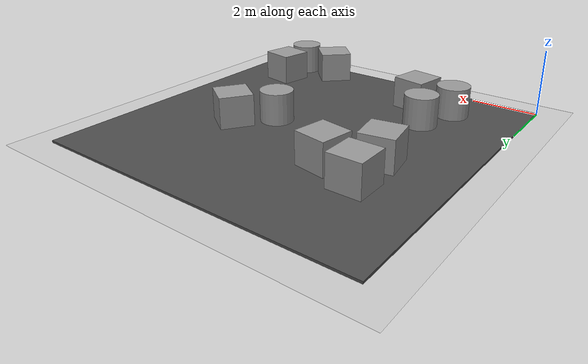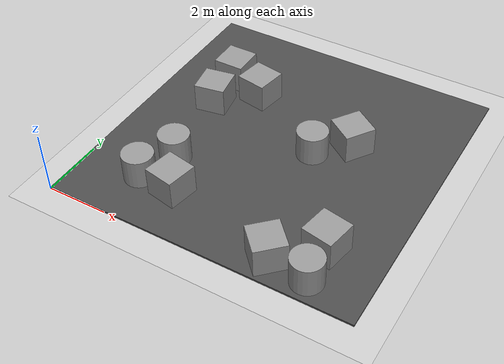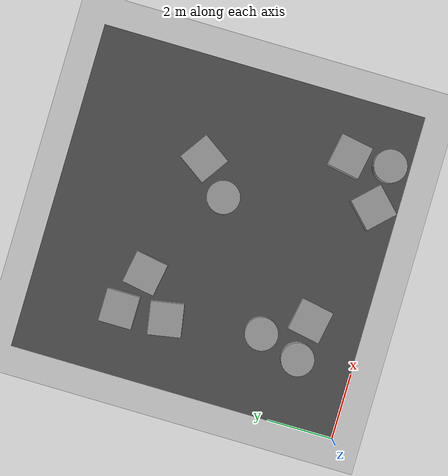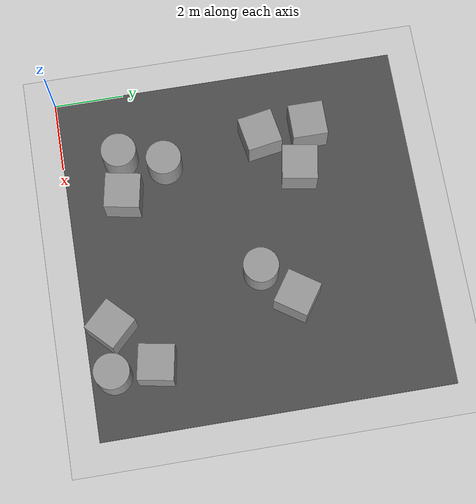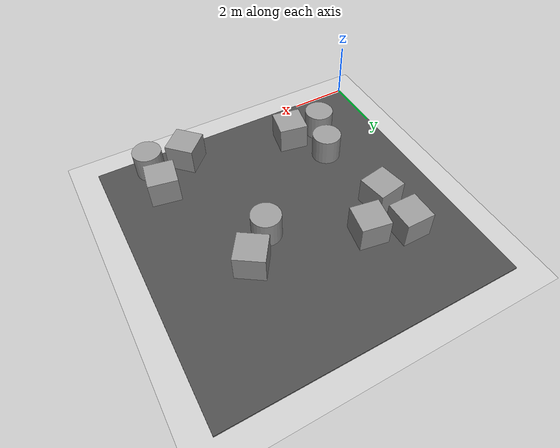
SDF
<sdf version="1.7">
 <world name="default">
  <light name="sun" type="directional">
   <pose>0 0 10 0 -0 0</pose>
   <diffuse>0.8 0.8 0.8 1</diffuse>
   <specular>0.2 0.2 0.2 1</specular>
   <attenuation>
    <range>1000</range>
    <constant>0.9</constant>
    <linear>0.01</linear>
    <quadratic>0.001</quadratic>
   </attenuation>
   <direction>-0.5 0.1 -0.9</direction>
   <spot><inner_angle>0</inner_angle><outer_angle>0</outer_angle><falloff>0</falloff></spot>
  </light>
  <model name="ground_plane">
   <static>1</static>
   <link name="link">
    <collision name="collision">
     <geometry><plane><normal>0 0 1</normal><size>100 100</size></plane></geometry>
     <surface>
      <contact><collide_bitmask>65535</collide_bitmask></contact>
      <friction><ode><mu>100</mu><mu2>50</mu2></ode></friction>
     </surface>
    </collision>
    <visual name="visual">
     <cast_shadows>0</cast_shadows>
     <geometry><plane><normal>0 0 1</normal><size>100 100</size></plane></geometry>
     <material>
      <script><uri>file://media/materials/scripts/gazebo.material</uri><name>Gazebo/Grey</name></script>
     </material>
    </visual>
   </link>
  </model>
  <gravity>0 0 -9.8</gravity>
  <magnetic_field>6e-06 2.3e-05 -4.2e-05</magnetic_field>
  <atmosphere type="adiabatic"/>
  <physics type="ode">
   <max_step_size>0.001</max_step_size>
   <real_time_factor>1</real_time_factor>
   <real_time_update_rate>1000</real_time_update_rate>
  </physics>
  <scene><ambient>0.4 0.4 0.4 1</ambient><background>0.7 0.7 0.7 1</background><shadows>1</shadows></scene>
  <model name="asphalt_plane">
   <static>1</static>
   <link name="link">
    <collision name="collision"><geometry><box><size>10.0033 9.97431 0.1</size></box></geometry></collision>
    <visual name="visual">
     <cast_shadows>0</cast_shadows>
     <geometry><box><size>10.0033 9.97431 0.1</size></box></geometry>
     <material>
      <script>
       <uri>model://asphalt_plane/materials/scripts</uri>
       <uri>model://asphalt_plane/materials/textures</uri>
       <name>vrc/asphalt</name>
      </script>
     </material>
    </visual>
    <velocity_decay><linear>0</linear><angular>0</angular></velocity_decay>
   </link>
   <pose>5 5 0 0 -0 0</pose>
  </model>
  <spherical_coordinates>
   <surface_model>EARTH_WGS84</surface_model>
   <latitude_deg>0</latitude_deg>
   <longitude_deg>0</longitude_deg>
   <elevation>0</elevation>
   <heading_deg>0</heading_deg>
  </spherical_coordinates>
  <model name="unit_box">
   <pose>8.22298 1.88355 0.499999 -2e-06 -0 -0.180073</pose>
   <link name="link">
    <inertial>
     <mass>1</mass>
     <inertia>
      <ixx>0.166667</ixx>
      <ixy>0</ixy>
      <ixz>0</ixz>
      <iyy>0.166667</iyy>
      <iyz>0</iyz>
      <izz>0.166667</izz>
     </inertia>
    </inertial>
    <collision name="collision"><geometry><box><size>1 1 1</size></box></geometry></collision>
    <visual name="visual">
     <geometry><box><size>1 1 1</size></box></geometry>
     <material>
      <script><name>Gazebo/Grey</name><uri>file://media/materials/scripts/gazebo.material</uri></script>
     </material>
    </visual>
   </link>
  </model>
  <model name="unit_box_0">
   <pose>6.96603 0.793995 0.5 0 -0 0.776486</pose>
   <link name="link">
    <inertial>
     <mass>1</mass>
     <inertia>
      <ixx>0.166667</ixx>
      <ixy>0</ixy>
      <ixz>0</ixz>
      <iyy>0.166667</iyy>
      <iyz>0</iyz>
      <izz>0.166667</izz>
     </inertia>
    </inertial>
    <collision name="collision"><geometry><box><size>1 1 1</size></box></geometry></collision>
    <visual name="visual">
     <geometry><box><size>1 1 1</size></box></geometry>
     <material>
      <script><name>Gazebo/Grey</name><uri>file://media/materials/scripts/gazebo.material</uri></script>
     </material>
    </visual>
   </link>
  </model>
  <model name="unit_cylinder">
   <pose>8.27909 0.664065 0.499996 4e-06 3e-06 -0</pose>
   <link name="link">
    <inertial>
     <mass>1</mass>
     <inertia><ixx>0.145833</ixx><ixy>0</ixy><ixz>0</ixz><iyy>0.145833</iyy><iyz>0</iyz><izz>0.125</izz></inertia>
    </inertial>
    <collision name="collision">
     <geometry><cylinder><radius>0.5</radius><length>1</length></cylinder></geometry>
    </collision>
    <visual name="visual">
     <geometry><cylinder><radius>0.5</radius><length>1</length></cylinder></geometry>
     <material>
      <script><name>Gazebo/Grey</name><uri>file://media/materials/scripts/gazebo.material</uri></script>
     </material>
    </visual>
   </link>
  </model>
  <model name="unit_box_1">
   <pose>2.00128 7.16958 0.499995 0 1e-05 0</pose>
   <link name="link">
    <inertial>
     <mass>1</mass>
     <inertia>
      <ixx>0.166667</ixx>
      <ixy>0</ixy>
      <ixz>0</ixz>
      <iyy>0.166667</iyy>
      <iyz>0</iyz>
      <izz>0.166667</izz>
     </inertia>
    </inertial>
    <collision name="collision"><geometry><box><size>1 1 1</size></box></geometry></collision>
    <visual name="visual">
     <geometry><box><size>1 1 1</size></box></geometry>
     <material>
      <script><name>Gazebo/Grey</name><uri>file://media/materials/scripts/gazebo.material</uri></script>
     </material>
    </visual>
   </link>
  </model>
  <model name="unit_box_2">
   <pose>2.0883 5.7621 0.499999 2e-06 -0 0.172653</pose>
   <link name="link">
    <inertial>
     <mass>1</mass>
     <inertia>
      <ixx>0.166667</ixx>
      <ixy>0</ixy>
      <ixz>0</ixz>
      <iyy>0.166667</iyy>
      <iyz>0</iyz>
      <izz>0.166667</izz>
     </inertia>
    </inertial>
    <collision name="collision"><geometry><box><size>1 1 1</size></box></geometry></collision>
    <visual name="visual">
     <geometry><box><size>1 1 1</size></box></geometry>
     <material>
      <script><name>Gazebo/Grey</name><uri>file://media/materials/scripts/gazebo.material</uri></script>
     </material>
    </visual>
   </link>
  </model>
  <model name="unit_box_3">
   <pose>3.21979 6.72584 0.499999 -2e-06 -0 -0.169767</pose>
   <link name="link">
    <inertial>
     <mass>1</mass>
     <inertia>
      <ixx>0.166667</ixx>
      <ixy>0</ixy>
      <ixz>0</ixz>
      <iyy>0.166667</iyy>
      <iyz>0</iyz>
      <izz>0.166667</izz>
     </inertia>
    </inertial>
    <collision name="collision"><geometry><box><size>1 1 1</size></box></geometry></collision>
    <visual name="visual">
     <geometry><box><size>1 1 1</size></box></geometry>
     <material>
      <script><name>Gazebo/Grey</name><uri>file://media/materials/scripts/gazebo.material</uri></script>
     </material>
    </visual>
   </link>
  </model>
  <model name="unit_box_4">
   <pose>3.23871 1.6474 0.499999 -2e-06 -0 -0.183882</pose>
   <link name="link">
    <inertial>
     <mass>1</mass>
     <inertia>
      <ixx>0.166667</ixx>
      <ixy>0</ixy>
      <ixz>0</ixz>
      <iyy>0.166667</iyy>
      <iyz>0</iyz>
      <izz>0.166667</izz>
     </inertia>
    </inertial>
    <collision name="collision"><geometry><box><size>1 1 1</size></box></geometry></collision>
    <visual name="visual">
     <geometry><box><size>1 1 1</size></box></geometry>
     <material>
      <script><name>Gazebo/Grey</name><uri>file://media/materials/scripts/gazebo.material</uri></script>
     </material>
    </visual>
   </link>
  </model>
  <model name="unit_cylinder_0">
   <pose>2.03366 1.69823 0.499992 -3e-06 4e-06 0</pose>
   <link name="link">
    <inertial>
     <mass>1</mass>
     <inertia><ixx>0.145833</ixx><ixy>0</ixy><ixz>0</ixz><iyy>0.145833</iyy><iyz>0</iyz><izz>0.125</izz></inertia>
    </inertial>
    <collision name="collision">
     <geometry><cylinder><radius>0.5</radius><length>1</length></cylinder></geometry>
    </collision>
    <visual name="visual">
     <geometry><cylinder><radius>0.5</radius><length>1</length></cylinder></geometry>
     <material>
      <script><name>Gazebo/Grey</name><uri>file://media/materials/scripts/gazebo.material</uri></script>
     </material>
    </visual>
   </link>
  </model>
  <model name="unit_cylinder_1">
   <pose>2.46041 2.93223 0.499998 3e-06 -4e-06 0</pose>
   <link name="link">
    <inertial>
     <mass>1</mass>
     <inertia><ixx>0.145833</ixx><ixy>0</ixy><ixz>0</ixz><iyy>0.145833</iyy><iyz>0</iyz><izz>0.125</izz></inertia>
    </inertial>
    <collision name="collision">
     <geometry><cylinder><radius>0.5</radius><length>1</length></cylinder></geometry>
    </collision>
    <visual name="visual">
     <geometry><cylinder><radius>0.5</radius><length>1</length></cylinder></geometry>
     <material>
      <script><name>Gazebo/Grey</name><uri>file://media/materials/scripts/gazebo.material</uri></script>
     </material>
    </visual>
   </link>
  </model>
  <model name="unit_box_5">
   <pose>6.95037 5.99978 0.5 2e-06 2e-06 -0.598567</pose>
   <link name="link">
    <inertial>
     <mass>1</mass>
     <inertia>
      <ixx>0.166667</ixx>
      <ixy>0</ixy>
      <ixz>0</ixz>
      <iyy>0.166667</iyy>
      <iyz>0</iyz>
      <izz>0.166667</izz>
     </inertia>
    </inertial>
    <collision name="collision"><geometry><box><size>1 1 1</size></box></geometry></collision>
    <visual name="visual">
     <geometry><box><size>1 1 1</size></box></geometry>
     <material>
      <script><name>Gazebo/Grey</name><uri>file://media/materials/scripts/gazebo.material</uri></script>
     </material>
    </visual>
   </link>
  </model>
  <model name="unit_cylinder_2">
   <pose>6.01588 5.13725 0.499997 3e-06 4e-06 -0</pose>
   <link name="link">
    <inertial>
     <mass>1</mass>
     <inertia><ixx>0.145833</ixx><ixy>0</ixy><ixz>0</ixz><iyy>0.145833</iyy><iyz>0</iyz><izz>0.125</izz></inertia>
    </inertial>
    <collision name="collision">
     <geometry><cylinder><radius>0.5</radius><length>1</length></cylinder></geometry>
    </collision>
    <visual name="visual">
     <geometry><cylinder><radius>0.5</radius><length>1</length></cylinder></geometry>
     <material>
      <script><name>Gazebo/Grey</name><uri>file://media/materials/scripts/gazebo.material</uri></script>
     </material>
    </visual>
   </link>
  </model>
 </world>
</sdf>
